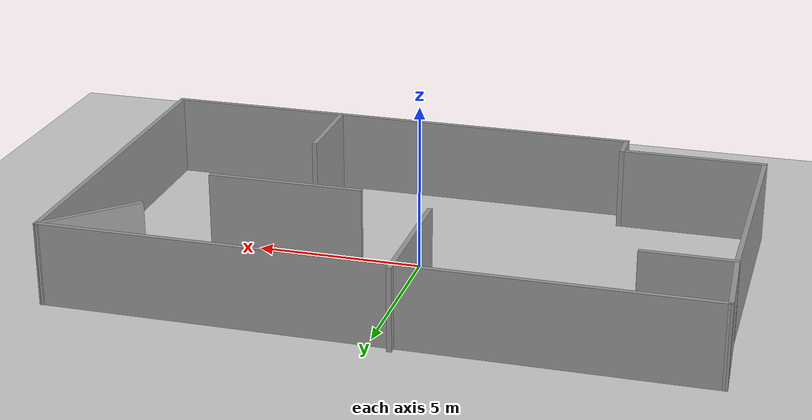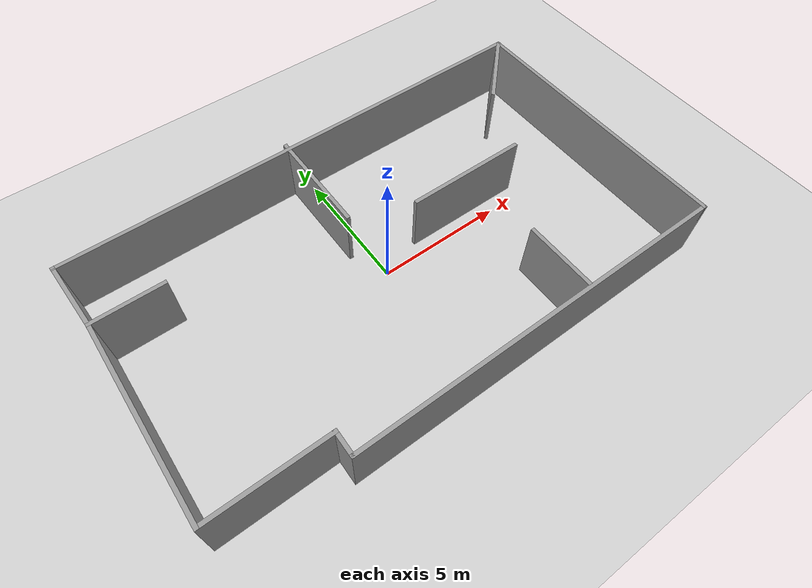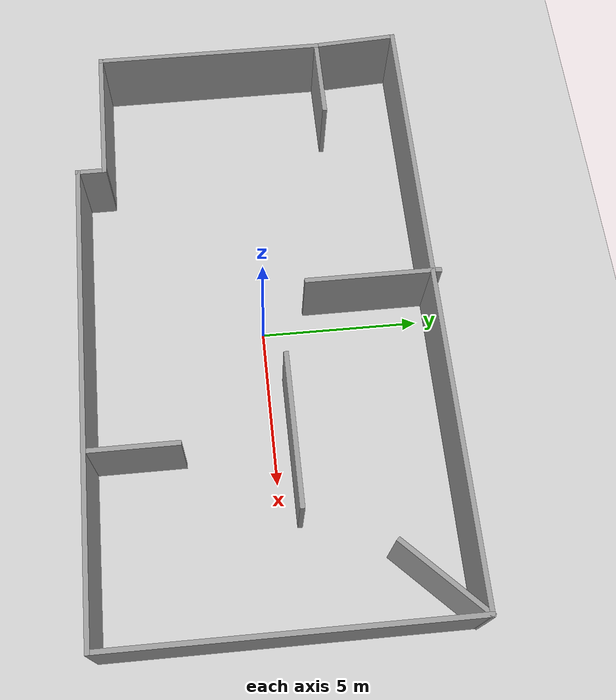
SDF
<?xml version="1.0" ?>
<sdf version="1.6">
  <world name="maze_world">

    <!-- Physics -->
    <physics type="ode">
      <max_step_size>0.001</max_step_size>
      <real_time_update_rate>1000</real_time_update_rate>
      <real_time_factor>1</real_time_factor>
      <gravity>0 0 -9.8</gravity>
    </physics>

    <!-- Scene -->
    <scene>
      <ambient>0.4 0.4 0.4 1</ambient>
      <background>0.7 0.7 0.7 1</background>
      <shadows>true</shadows>
    </scene>

    <!-- Sun -->
    <include>
      <uri>model://sun</uri>
    </include>

    <!-- Ground plane -->
    <include>
      <uri>model://ground_plane</uri>
    </include>

    <!-- Maze -->
    <include>
      <uri>model://maze_1</uri>
      <pose>0 0 0 0 0 0</pose>
    </include>

    <!-- GUI camera -->
    <gui fullscreen='0'>
      <camera name='user_camera'>
        <pose>3 -3 2 0.3 0.2 2.4</pose>
      </camera>
    </gui>

  </world>
</sdf>

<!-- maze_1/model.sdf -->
<sdf version='1.7'>
  <model name='maze_1'>
    <pose>-0.377522 1.96689 0 0 -0 0</pose>
    <link name='Wall_11'>
      <collision name='Wall_11_Collision'>
        <geometry>
          <box>
            <size>7.5 0.15 2.5</size>
          </box>
        </geometry>
        <pose>0 0 1.25 0 -0 0</pose>
      </collision>
      <visual name='Wall_11_Visual'>
        <pose>0 0 1.25 0 -0 0</pose>
        <geometry>
          <box>
            <size>7.5 0.15 2.5</size>
          </box>
        </geometry>
        <material>
          <script>
            <uri>file://media/materials/scripts/gazebo.material</uri>
            <name>Gazebo/Grey</name>
          </script>
          <ambient>1 1 1 1</ambient>
        </material>
        <meta>
          <layer>0</layer>
        </meta>
      </visual>
      <pose>-9.53847 -1.00048 0 0 -0 -1.5708</pose>
    </link>
    <link name='Wall_12'>
      <collision name='Wall_12_Collision'>
        <geometry>
          <box>
            <size>4.5 0.15 2.5</size>
          </box>
        </geometry>
        <pose>0 0 1.25 0 -0 0</pose>
      </collision>
      <visual name='Wall_12_Visual'>
        <pose>0 0 1.25 0 -0 0</pose>
        <geometry>
          <box>
            <size>4.5 0.15 2.5</size>
          </box>
        </geometry>
        <material>
          <script>
            <uri>file://media/materials/scripts/gazebo.material</uri>
            <name>Gazebo/Grey</name>
          </script>
          <ambient>1 1 1 1</ambient>
        </material>
        <meta>
          <layer>0</layer>
        </meta>
      </visual>
      <pose>-7.36347 -4.67548 0 0 -0 0</pose>
    </link>
    <link name='Wall_13'>
      <collision name='Wall_13_Collision'>
        <geometry>
          <box>
            <size>1 0.15 2.5</size>
          </box>
        </geometry>
        <pose>0 0 1.25 0 -0 0</pose>
      </collision>
      <visual name='Wall_13_Visual'>
        <pose>0 0 1.25 0 -0 0</pose>
        <geometry>
          <box>
            <size>1 0.15 2.5</size>
          </box>
        </geometry>
        <material>
          <script>
            <uri>file://media/materials/scripts/gazebo.material</uri>
            <name>Gazebo/Grey</name>
          </script>
          <ambient>1 1 1 1</ambient>
        </material>
        <meta>
          <layer>0</layer>
        </meta>
      </visual>
      <pose>-5.18847 -5.10048 0 0 -0 -1.5708</pose>
    </link>
    <link name='Wall_14'>
      <collision name='Wall_14_Collision'>
        <geometry>
          <box>
            <size>15 0.15 2.5</size>
          </box>
        </geometry>
        <pose>0 0 1.25 0 -0 0</pose>
      </collision>
      <visual name='Wall_14_Visual'>
        <pose>0 0 1.25 0 -0 0</pose>
        <geometry>
          <box>
            <size>15 0.15 2.5</size>
          </box>
        </geometry>
        <material>
          <script>
            <uri>file://media/materials/scripts/gazebo.material</uri>
            <name>Gazebo/Grey</name>
          </script>
          <ambient>1 1 1 1</ambient>
        </material>
        <meta>
          <layer>0</layer>
        </meta>
      </visual>
      <pose>2.23653 -5.52548 0 0 -0 0</pose>
    </link>
    <link name='Wall_15'>
      <collision name='Wall_15_Collision'>
        <geometry>
          <box>
            <size>11 0.15 2.5</size>
          </box>
        </geometry>
        <pose>0 0 1.25 0 -0 0</pose>
      </collision>
      <visual name='Wall_15_Visual'>
        <pose>0 0 1.25 0 -0 0</pose>
        <geometry>
          <box>
            <size>11 0.15 2.5</size>
          </box>
        </geometry>
        <material>
          <script>
            <uri>file://media/materials/scripts/gazebo.material</uri>
            <name>Gazebo/Grey</name>
          </script>
          <ambient>1 1 1 1</ambient>
        </material>
        <meta>
          <layer>0</layer>
        </meta>
      </visual>
      <pose>9.66153 -0.100479 0 0 -0 1.5708</pose>
    </link>
    <link name='Wall_16'>
      <collision name='Wall_16_Collision'>
        <geometry>
          <box>
            <size>19.5 0.15 2.5</size>
          </box>
        </geometry>
        <pose>0 0 1.25 0 -0 0</pose>
      </collision>
      <visual name='Wall_16_Visual'>
        <pose>0 0 1.25 0 -0 0</pose>
        <geometry>
          <box>
            <size>19.5 0.15 2.5</size>
          </box>
        </geometry>
        <material>
          <script>
            <uri>file://media/materials/scripts/gazebo.material</uri>
            <name>Gazebo/Grey</name>
          </script>
          <ambient>1 1 1 1</ambient>
        </material>
        <meta>
          <layer>0</layer>
        </meta>
      </visual>
      <pose>-0.013474 5.32452 0 0 -0 3.14159</pose>
    </link>
    <link name='Wall_17'>
      <collision name='Wall_17_Collision'>
        <geometry>
          <box>
            <size>2.80424 0.15 2.5</size>
          </box>
        </geometry>
        <pose>0 0 1.25 0 -0 0</pose>
      </collision>
      <visual name='Wall_17_Visual'>
        <pose>0 0 1.25 0 -0 0</pose>
        <geometry>
          <box>
            <size>2.80424 0.15 2.5</size>
          </box>
        </geometry>
        <material>
          <script>
            <uri>file://media/materials/scripts/gazebo.material</uri>
            <name>Gazebo/Grey</name>
          </script>
          <ambient>1 1 1 1</ambient>
        </material>
        <meta>
          <layer>0</layer>
        </meta>
      </visual>
      <pose>-9.61347 3.99952 0 0 -0 -1.51425</pose>
    </link>
    <link name='Wall_18'>
      <collision name='Wall_18_Collision'>
        <geometry>
          <box>
            <size>2.75 0.15 2.5</size>
          </box>
        </geometry>
        <pose>0 0 1.25 0 -0 0</pose>
      </collision>
      <visual name='Wall_18_Visual'>
        <pose>0 0 1.25 0 -0 0</pose>
        <geometry>
          <box>
            <size>2.75 0.15 2.5</size>
          </box>
        </geometry>
        <material>
          <script>
            <uri>file://media/materials/scripts/gazebo.material</uri>
            <name>Gazebo/Grey</name>
          </script>
          <ambient>1 1 1 1</ambient>
        </material>
        <meta>
          <layer>0</layer>
        </meta>
      </visual>
      <pose>-8.23847 2.67452 0 0 -0 0</pose>
    </link>
    <link name='Wall_21'>
      <collision name='Wall_21_Collision'>
        <geometry>
          <box>
            <size>3.25 0.15 2.5</size>
          </box>
        </geometry>
        <pose>0 0 1.25 0 -0 0</pose>
      </collision>
      <visual name='Wall_21_Visual'>
        <pose>0 0 1.25 0 -0 0</pose>
        <geometry>
          <box>
            <size>3.25 0.15 2.5</size>
          </box>
        </geometry>
        <material>
          <script>
            <uri>file://media/materials/scripts/gazebo.material</uri>
            <name>Gazebo/Grey</name>
          </script>
          <ambient>1 1 1 1</ambient>
        </material>
        <meta>
          <layer>0</layer>
        </meta>
      </visual>
      <pose>8.56551 4.22851 0 0 -0 -2.35619</pose>
    </link>
    <link name='Wall_23'>
      <collision name='Wall_23_Collision'>
        <geometry>
          <box>
            <size>4.25 0.15 2.5</size>
          </box>
        </geometry>
        <pose>0 0 1.25 0 -0 0</pose>
      </collision>
      <visual name='Wall_23_Visual'>
        <pose>0 0 1.25 0 -0 0</pose>
        <geometry>
          <box>
            <size>4.25 0.15 2.5</size>
          </box>
        </geometry>
        <material>
          <script>
            <uri>file://media/materials/scripts/gazebo.material</uri>
            <name>Gazebo/Grey</name>
          </script>
          <ambient>1 1 1 1</ambient>
        </material>
        <meta>
          <layer>0</layer>
        </meta>
      </visual>
      <pose>-0.677972 3.47548 0 0 -0 -1.5708</pose>
    </link>
    <link name='Wall_26'>
      <collision name='Wall_26_Collision'>
        <geometry>
          <box>
            <size>4.75 0.15 2.5</size>
          </box>
        </geometry>
        <pose>0 0 1.25 0 -0 0</pose>
      </collision>
      <visual name='Wall_26_Visual'>
        <pose>0 0 1.25 0 -0 0</pose>
        <geometry>
          <box>
            <size>4.75 0.15 2.5</size>
          </box>
        </geometry>
        <material>
          <script>
            <uri>file://media/materials/scripts/gazebo.material</uri>
            <name>Gazebo/Grey</name>
          </script>
          <ambient>1 1 1 1</ambient>
        </material>
        <meta>
          <layer>0</layer>
        </meta>
      </visual>
      <pose>3.97735 0.549747 0 0 -0 3.14159</pose>
    </link>
    <link name='Wall_29'>
      <collision name='Wall_29_Collision'>
        <geometry>
          <box>
            <size>2.75 0.15 2.5</size>
          </box>
        </geometry>
        <pose>0 0 1.25 0 -0 0</pose>
      </collision>
      <visual name='Wall_29_Visual'>
        <pose>0 0 1.25 0 -0 0</pose>
        <geometry>
          <box>
            <size>2.75 0.15 2.5</size>
          </box>
        </geometry>
        <material>
          <script>
            <uri>file://media/materials/scripts/gazebo.material</uri>
            <name>Gazebo/Grey</name>
          </script>
          <ambient>1 1 1 1</ambient>
        </material>
        <meta>
          <layer>0</layer>
        </meta>
      </visual>
      <pose>4.13725 -4.08903 0 0 -0 1.5708</pose>
    </link>
    <static>1</static>
  </model>
</sdf>
